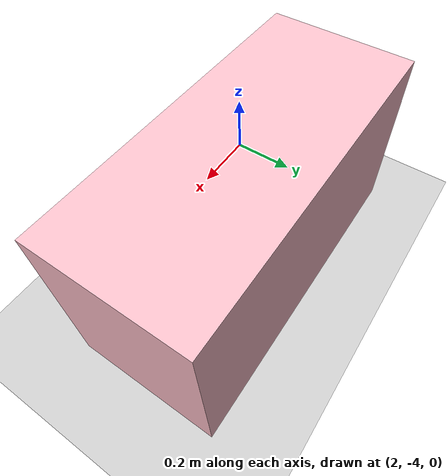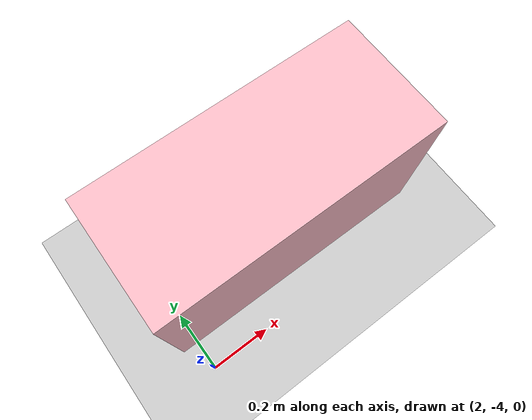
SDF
<sdf version="1.9">
 <world name="pig_pen_8units_world">
  <model name="ground_plane">
   <static>true</static>
   <link name="link">
    <collision name="collision">
     <geometry><plane><normal>0 0 1</normal><size>20 20</size></plane></geometry>
     <surface><friction><ode><mu>1.0</mu><mu2>1.0</mu2></ode></friction></surface>
    </collision>
    <visual name="visual">
     <geometry><plane><normal>0 0 1</normal><size>20 20</size></plane></geometry>
     <material>
      <ambient>0.8 0.8 0.8 1</ambient>
      <diffuse>0.8 0.8 0.8 1</diffuse>
      <specular>0.2 0.2 0.2 1</specular>
     </material>
    </visual>
   </link>
  </model>
  <include><uri>model://farm_pig</uri><name>pig8</name><pose>2.4 -3.705 0.27 0 0 3.1416</pose></include>
 </world>
</sdf>
